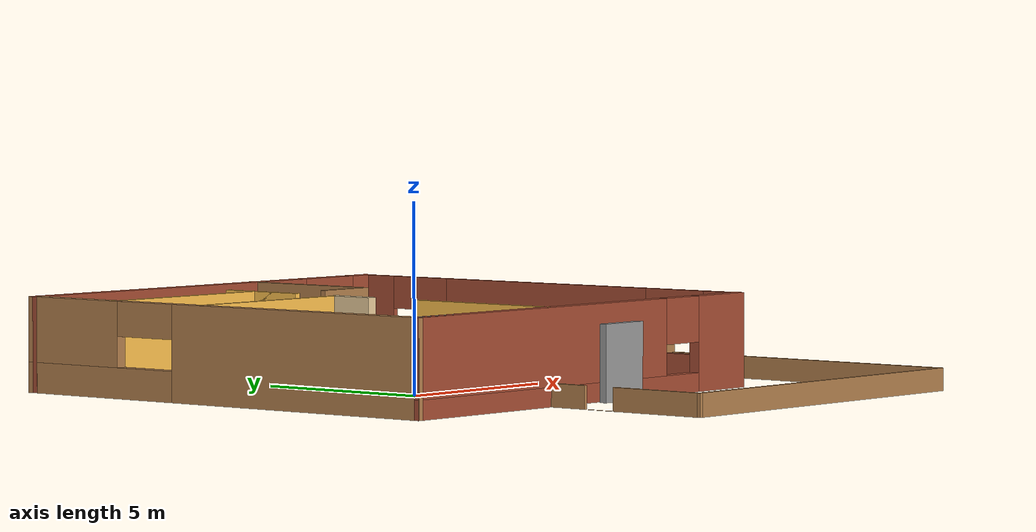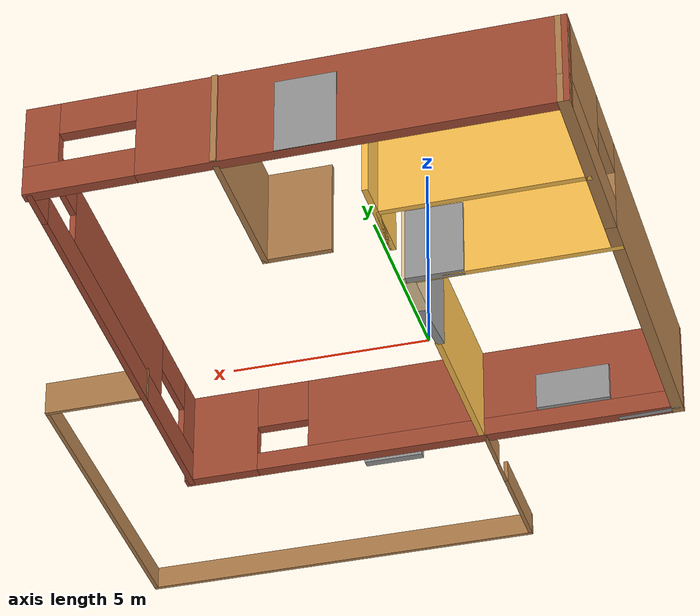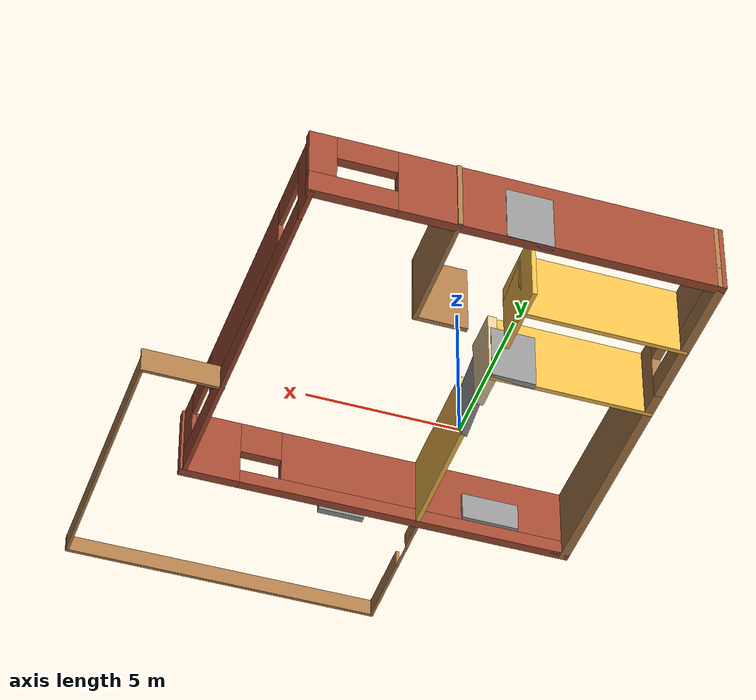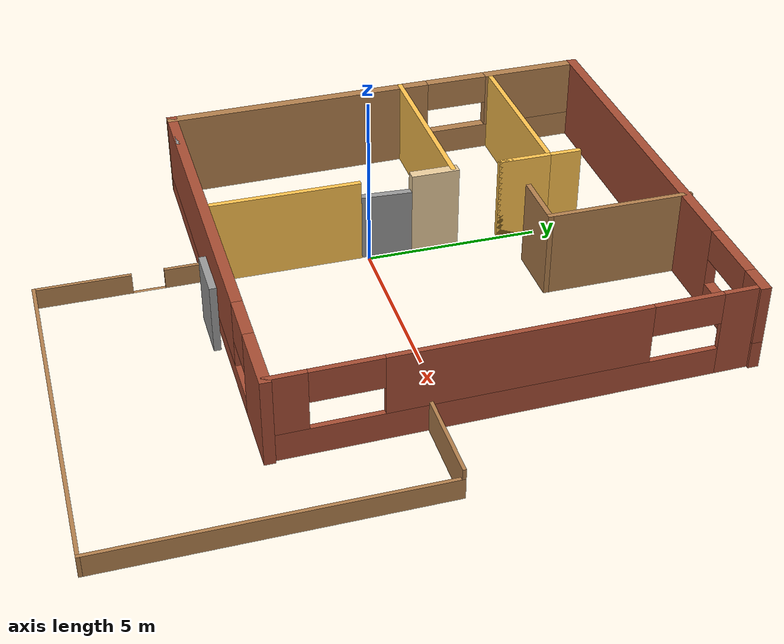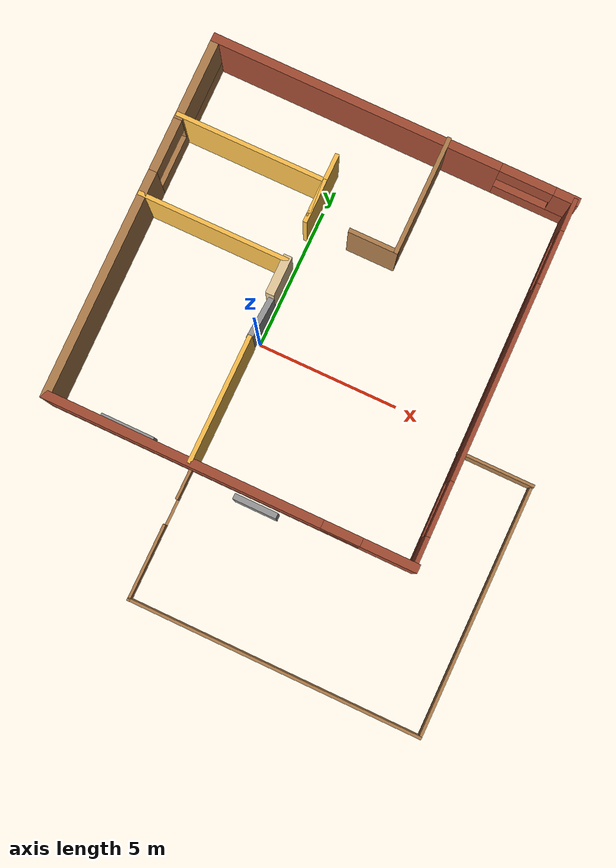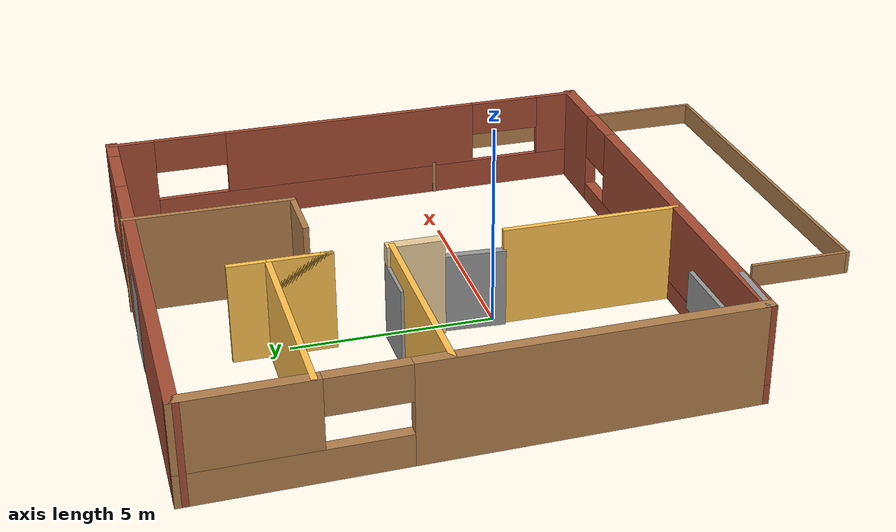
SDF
<?xml version='1.0'?>
<sdf version='1.6'>
  <model name='robothause'>
    <pose frame=''>2.30044 -0.5115 0 0 -0 0</pose>
    <link name='Door_0'>
      <collision name='Door_0_Collision'>
        <geometry>
          <box>
            <size>1.5 0.17 2</size>
          </box>
        </geometry>
        <pose frame=''>0 0 1 0 -0 0</pose>
      </collision>
      <visual name='Door_0_Visual'>
        <pose frame=''>0 0 1 0 -0 0</pose>
        <geometry>
          <box>
            <size>1.5 0.17 2</size>
          </box>
        </geometry>
        <material>
          <script>
            <uri>file://media/materials/scripts/gazebo.material</uri>
            <name>Gazebo/Grey</name>
          </script>
        </material>
      </visual>
      <pose frame=''>-1.60451 8.84376 0 0 -0 0</pose>
    </link>
    <link name='Door_5'>
      <collision name='Door_5_Collision'>
        <geometry>
          <box>
            <size>1.45658 0.2 2</size>
          </box>
        </geometry>
        <pose frame=''>0 0 1 0 -0 0</pose>
      </collision>
      <visual name='Door_5_Visual'>
        <pose frame=''>0 0 1 0 -0 0</pose>
        <geometry>
          <box>
            <size>1.45658 0.2 2</size>
          </box>
        </geometry>
        <material>
          <script>
            <uri>file://media/materials/scripts/gazebo.material</uri>
            <name>Gazebo/Grey</name>
          </script>
        </material>
      </visual>
      <pose frame=''>-3.14527 3.09831 0 0 0 -3.1286</pose>
    </link>
    <link name='Door_6'>
      <collision name='Door_6_Collision'>
        <geometry>
          <box>
            <size>1.52189 0.2 2</size>
          </box>
        </geometry>
        <pose frame=''>0 0 1 0 -0 0</pose>
      </collision>
      <visual name='Door_6_Visual'>
        <pose frame=''>0 0 1 0 -0 0</pose>
        <geometry>
          <box>
            <size>1.52189 0.2 2</size>
          </box>
        </geometry>
        <material>
          <script>
            <uri>file://media/materials/scripts/gazebo.material</uri>
            <name>Gazebo/Grey</name>
          </script>
        </material>
      </visual>
      <pose frame=''>-2.4791 1.03929 0 0 -0 -1.63443</pose>
    </link>
    <link name='Door_7'>
      <collision name='Door_7_Collision'>
        <geometry>
          <box>
            <size>1.512 0.2 2</size>
          </box>
        </geometry>
        <pose frame=''>0 0 1 0 -0 0</pose>
      </collision>
      <visual name='Door_7_Visual'>
        <pose frame=''>0 0 1 0 -0 0</pose>
        <geometry>
          <box>
            <size>1.512 0.2 2</size>
          </box>
        </geometry>
        <material>
          <script>
            <uri>file://media/materials/scripts/gazebo.material</uri>
            <name>Gazebo/Grey</name>
          </script>
        </material>
      </visual>
      <pose frame=''>-0.035046 -4.48603 0 0 -0 0</pose>
    </link>
    <link name='Wall_0'>
      <collision name='Wall_0_Collision'>
        <geometry>
          <box>
            <size>1.59265 0.15 2.5</size>
          </box>
        </geometry>
        <pose frame=''>0 0 1.25 0 -0 0</pose>
      </collision>
      <visual name='Wall_0_Visual'>
        <pose frame=''>0 0 1.25 0 -0 0</pose>
        <geometry>
          <box>
            <size>1.59265 0.15 2.5</size>
          </box>
        </geometry>
        <material>
          <script>
            <uri>file://media/materials/scripts/gazebo.material</uri>
            <name>Gazebo/Grey</name>
          </script>
          <ambient>1 1 1 1</ambient>
        </material>
        <meta>
          <layer>0</layer>
        </meta>
      </visual>
      <pose frame=''>-6.79917 -4.14417 0 0 -0 3.11156</pose>
    </link>
    <link name='Wall_10'>
      <collision name='Wall_10_Collision'>
        <geometry>
          <box>
            <size>4.5 0.15 2.5</size>
          </box>
        </geometry>
        <pose frame=''>0 0 1.25 0 -0 0</pose>
      </collision>
      <visual name='Wall_10_Visual'>
        <pose frame=''>0 0 1.25 0 -0 0</pose>
        <geometry>
          <box>
            <size>4.5 0.15 2.5</size>
          </box>
        </geometry>
        <material>
          <script>
            <uri>file://media/materials/scripts/gazebo.material</uri>
            <name>Gazebo/Grey</name>
          </script>
          <ambient>1 0.764706 0.305882 1</ambient>
        </material>
        <meta>
          <layer>0</layer>
        </meta>
      </visual>
      <pose frame=''>-2.47244 -1.9195 0 0 -0 -1.5708</pose>
    </link>
    <link name='Wall_12'>
      <collision name='Wall_12_Collision'>
        <geometry>
          <box>
            <size>5.35 0.15 2.5</size>
          </box>
        </geometry>
        <pose frame=''>0 0 1.25 0 -0 0</pose>
      </collision>
      <visual name='Wall_12_Visual'>
        <pose frame=''>0 0 1.25 0 -0 0</pose>
        <geometry>
          <box>
            <size>5.35 0.15 2.5</size>
          </box>
        </geometry>
        <material>
          <script>
            <uri>file://media/materials/scripts/gazebo.material</uri>
            <name>Gazebo/Grey</name>
          </script>
          <ambient>1 0.764706 0.305882 1</ambient>
        </material>
        <meta>
          <layer>0</layer>
        </meta>
      </visual>
      <pose frame=''>-5.08344 3.0385 0 0 -0 0</pose>
    </link>
    <link name='Wall_13'>
      <collision name='Wall_13_Collision'>
        <geometry>
          <box>
            <size>1.4004 0.3 2.5</size>
          </box>
        </geometry>
        <pose frame=''>0 0 1.25 0 -0 0</pose>
      </collision>
      <visual name='Wall_13_Visual'>
        <pose frame=''>0 0 1.25 0 -0 0</pose>
        <geometry>
          <box>
            <size>1.4004 0.3 2.5</size>
          </box>
        </geometry>
        <material>
          <script>
            <uri>file://media/materials/scripts/gazebo.material</uri>
            <name>Gazebo/Grey</name>
          </script>
          <ambient>0.921569 0.807843 0.615686 1</ambient>
        </material>
        <meta>
          <layer>0</layer>
        </meta>
      </visual>
      <pose frame=''>-2.48344 2.4885 0 0 -0 -1.5708</pose>
    </link>
    <link name='Wall_15'>
      <collision name='Wall_15_Collision'>
        <geometry>
          <box>
            <size>5.25 0.15 2.5</size>
          </box>
        </geometry>
        <pose frame=''>0 0 1.25 0 -0 0</pose>
      </collision>
      <visual name='Wall_15_Visual'>
        <pose frame=''>0 0 1.25 0 -0 0</pose>
        <geometry>
          <box>
            <size>5.25 0.15 2.5</size>
          </box>
        </geometry>
        <material>
          <script>
            <uri>file://media/materials/scripts/gazebo.material</uri>
            <name>Gazebo/Grey</name>
          </script>
          <ambient>1 0.764706 0.305882 1</ambient>
        </material>
        <meta>
          <layer>0</layer>
        </meta>
      </visual>
      <pose frame=''>-5.16044 5.9405 0 0 -0 0</pose>
    </link>
    <link name='Wall_17'>
      <pose frame=''>-2.46244 5.6595 0 0 -0 -1.5708</pose>
      <visual name='Wall_17_Visual_0'>
        <pose frame=''>0 0 1.25 0 -0 0</pose>
        <geometry>
          <box>
            <size>2.5 0.15 2.5</size>
          </box>
        </geometry>
        <material>
          <script>
            <uri>file://media/materials/scripts/gazebo.material</uri>
            <name>Gazebo/Grey</name>
          </script>
          <ambient>1 0.764706 0.305882 1</ambient>
        </material>
        <meta>
          <layer>0</layer>
        </meta>
      </visual>
      <collision name='Wall_17_Collision_0'>
        <geometry>
          <box>
            <size>2.5 0.15 2.5</size>
          </box>
        </geometry>
        <pose frame=''>0 0 1.25 0 -0 0</pose>
      </collision>
      <visual name='Wall_17_Visual_1'>
        <pose frame=''>0.466174 0 1.25 0 -0 0</pose>
        <geometry>
          <box>
            <size>1.56765 0.15 2.5</size>
          </box>
        </geometry>
        <material>
          <script>
            <uri>file://media/materials/scripts/gazebo.material</uri>
            <name>Gazebo/Grey</name>
          </script>
          <ambient>1 0.764706 0.305882 1</ambient>
        </material>
        <meta>
          <layer>0</layer>
        </meta>
      </visual>
      <collision name='Wall_17_Collision_1'>
        <geometry>
          <box>
            <size>1.56765 0.15 2.5</size>
          </box>
        </geometry>
        <pose frame=''>0.466174 0 1.25 0 -0 0</pose>
      </collision>
    </link>
    <link name='Wall_19'>
      <collision name='Wall_19_Collision'>
        <geometry>
          <box>
            <size>4.25 0.15 2.5</size>
          </box>
        </geometry>
        <pose frame=''>0 0 1.25 0 -0 0</pose>
      </collision>
      <visual name='Wall_19_Visual'>
        <pose frame=''>0 0 1.25 0 -0 0</pose>
        <geometry>
          <box>
            <size>4.25 0.15 2.5</size>
          </box>
        </geometry>
        <material>
          <script>
            <uri>file://media/materials/scripts/gazebo.material</uri>
            <name>Gazebo/Wood</name>
          </script>
          <ambient>1 1 1 1</ambient>
        </material>
        <meta>
          <layer>0</layer>
        </meta>
      </visual>
      <pose frame=''>0.606561 6.8285 0 0 -0 -1.5708</pose>
    </link>
    <link name='Wall_20'>
      <collision name='Wall_20_Collision'>
        <geometry>
          <box>
            <size>1.75 0.15 2.5</size>
          </box>
        </geometry>
        <pose frame=''>0 0 1.25 0 -0 0</pose>
      </collision>
      <visual name='Wall_20_Visual'>
        <pose frame=''>0 0 1.25 0 -0 0</pose>
        <geometry>
          <box>
            <size>1.75 0.15 2.5</size>
          </box>
        </geometry>
        <material>
          <script>
            <uri>file://media/materials/scripts/gazebo.material</uri>
            <name>Gazebo/Wood</name>
          </script>
          <ambient>1 1 1 1</ambient>
        </material>
        <meta>
          <layer>0</layer>
        </meta>
      </visual>
      <pose frame=''>-0.193439 4.7785 0 0 -0 3.14159</pose>
    </link>
    <link name='Wall_22'>
      <collision name='Wall_22_Collision'>
        <geometry>
          <box>
            <size>2.7 0.1 0.9</size>
          </box>
        </geometry>
        <pose frame=''>0 0 0.45 0 -0 0</pose>
      </collision>
      <visual name='Wall_22_Visual'>
        <pose frame=''>0 0 0.45 0 -0 0</pose>
        <geometry>
          <box>
            <size>2.7 0.1 0.9</size>
          </box>
        </geometry>
        <material>
          <script>
            <uri>file://media/materials/scripts/gazebo.material</uri>
            <name>Gazebo/Wood</name>
          </script>
          <ambient>1 1 1 1</ambient>
        </material>
        <meta>
          <layer>0</layer>
        </meta>
      </visual>
      <pose frame=''>6.50656 -0.0535 0 0 -0 0</pose>
    </link>
    <link name='Wall_23'>
      <collision name='Wall_23_Collision'>
        <geometry>
          <box>
            <size>8.95 0.1 0.6</size>
          </box>
        </geometry>
        <pose frame=''>0 0 0.3 0 -0 0</pose>
      </collision>
      <visual name='Wall_23_Visual'>
        <pose frame=''>0 0 0.3 0 -0 0</pose>
        <geometry>
          <box>
            <size>8.95 0.1 0.6</size>
          </box>
        </geometry>
        <material>
          <script>
            <uri>file://media/materials/scripts/gazebo.material</uri>
            <name>Gazebo/Wood</name>
          </script>
          <ambient>1 1 1 1</ambient>
        </material>
        <meta>
          <layer>0</layer>
        </meta>
      </visual>
      <pose frame=''>7.80656 -4.4785 0 0 -0 -1.5708</pose>
    </link>
    <link name='Wall_24'>
      <collision name='Wall_24_Collision'>
        <geometry>
          <box>
            <size>10.45 0.1 0.6</size>
          </box>
        </geometry>
        <pose frame=''>0 0 0.3 0 -0 0</pose>
      </collision>
      <visual name='Wall_24_Visual'>
        <pose frame=''>0 0 0.3 0 -0 0</pose>
        <geometry>
          <box>
            <size>10.45 0.1 0.6</size>
          </box>
        </geometry>
        <material>
          <script>
            <uri>file://media/materials/scripts/gazebo.material</uri>
            <name>Gazebo/Wood</name>
          </script>
          <ambient>1 1 1 1</ambient>
        </material>
        <meta>
          <layer>0</layer>
        </meta>
      </visual>
      <pose frame=''>2.63156 -8.9035 0 0 -0 3.14159</pose>
    </link>
    <link name='Wall_25'>
      <pose frame=''>-2.54344 -6.4785 0 0 -0 1.5708</pose>
      <visual name='Wall_25_Visual_0'>
        <pose frame=''>-1.11707 0 0.3 0 -0 0</pose>
        <geometry>
          <box>
            <size>2.71585 0.1 0.6</size>
          </box>
        </geometry>
        <material>
          <script>
            <uri>file://media/materials/scripts/gazebo.material</uri>
            <name>Gazebo/Wood</name>
          </script>
          <ambient>0.760784 0.662745 0.627451 1</ambient>
        </material>
        <meta>
          <layer>0</layer>
        </meta>
      </visual>
      <collision name='Wall_25_Collision_0'>
        <geometry>
          <box>
            <size>2.71585 0.1 0.6</size>
          </box>
        </geometry>
        <pose frame=''>-1.11707 0 0.3 0 -0 0</pose>
      </collision>
      <visual name='Wall_25_Visual_1'>
        <pose frame=''>1.80793 0 0.3 0 -0 0</pose>
        <geometry>
          <box>
            <size>1.33415 0.1 0.6</size>
          </box>
        </geometry>
        <material>
          <script>
            <uri>file://media/materials/scripts/gazebo.material</uri>
            <name>Gazebo/Wood</name>
          </script>
          <ambient>0.760784 0.662745 0.627451 1</ambient>
        </material>
        <meta>
          <layer>0</layer>
        </meta>
      </visual>
      <collision name='Wall_25_Collision_1'>
        <geometry>
          <box>
            <size>1.33415 0.1 0.6</size>
          </box>
        </geometry>
        <pose frame=''>1.80793 0 0.3 0 -0 0</pose>
      </collision>
      <visual name='Wall_25_Visual_2'>
        <pose frame=''>0.690851 0 0 0 -0 0</pose>
        <geometry>
          <box>
            <size>0.9 0.1 0</size>
          </box>
        </geometry>
        <material>
          <script>
            <uri>file://media/materials/scripts/gazebo.material</uri>
            <name>Gazebo/Wood</name>
          </script>
          <ambient>0.760784 0.662745 0.627451 1</ambient>
        </material>
        <meta>
          <layer>0</layer>
        </meta>
      </visual>
      <collision name='Wall_25_Collision_2'>
        <geometry>
          <box>
            <size>0.9 0.1 0</size>
          </box>
        </geometry>
        <pose frame=''>0.690851 0 0 0 -0 0</pose>
      </collision>
    </link>
    <link name='Wall_5'>
      <pose frame=''>-7.61244 2.334 0 0 -0 1.58505</pose>
      <visual name='Wall_5_Visual_0'>
        <pose frame=''>-2.53092 0 1.25 0 -0 0</pose>
        <geometry>
          <box>
            <size>8.15247 0.3 2.5</size>
          </box>
        </geometry>
        <material>
          <script>
            <uri>file://media/materials/scripts/gazebo.material</uri>
            <name>Gazebo/Wood</name>
          </script>
          <ambient>0.435294 0.796078 0.67451 1</ambient>
        </material>
        <meta>
          <layer>0</layer>
        </meta>
      </visual>
      <collision name='Wall_5_Collision_0'>
        <geometry>
          <box>
            <size>8.15247 0.3 2.5</size>
          </box>
        </geometry>
        <pose frame=''>-2.53092 0 1.25 0 -0 0</pose>
      </collision>
      <visual name='Wall_5_Visual_1'>
        <pose frame=''>4.07624 0 0.4 0 -0 0</pose>
        <geometry>
          <box>
            <size>5.06184 0.3 0.8</size>
          </box>
        </geometry>
        <material>
          <script>
            <uri>file://media/materials/scripts/gazebo.material</uri>
            <name>Gazebo/Wood</name>
          </script>
          <ambient>0.435294 0.796078 0.67451 1</ambient>
        </material>
        <meta>
          <layer>0</layer>
        </meta>
      </visual>
      <collision name='Wall_5_Collision_1'>
        <geometry>
          <box>
            <size>5.06184 0.3 0.8</size>
          </box>
        </geometry>
        <pose frame=''>4.07624 0 0.4 0 -0 0</pose>
      </collision>
      <visual name='Wall_5_Visual_2'>
        <pose frame=''>5.02624 0 1.65 0 -0 0</pose>
        <geometry>
          <box>
            <size>3.16184 0.3 1.7</size>
          </box>
        </geometry>
        <material>
          <script>
            <uri>file://media/materials/scripts/gazebo.material</uri>
            <name>Gazebo/Wood</name>
          </script>
          <ambient>0.435294 0.796078 0.67451 1</ambient>
        </material>
        <meta>
          <layer>0</layer>
        </meta>
      </visual>
      <collision name='Wall_5_Collision_2'>
        <geometry>
          <box>
            <size>3.16184 0.3 1.7</size>
          </box>
        </geometry>
        <pose frame=''>5.02624 0 1.65 0 -0 0</pose>
      </collision>
      <visual name='Wall_5_Visual_3'>
        <pose frame=''>2.49532 0 2.05 0 -0 0</pose>
        <geometry>
          <box>
            <size>1.9 0.3 0.9</size>
          </box>
        </geometry>
        <material>
          <script>
            <uri>file://media/materials/scripts/gazebo.material</uri>
            <name>Gazebo/Wood</name>
          </script>
          <ambient>0.435294 0.796078 0.67451 1</ambient>
        </material>
        <meta>
          <layer>0</layer>
        </meta>
      </visual>
      <collision name='Wall_5_Collision_3'>
        <geometry>
          <box>
            <size>1.9 0.3 0.9</size>
          </box>
        </geometry>
        <pose frame=''>2.49532 0 2.05 0 -0 0</pose>
      </collision>
    </link>
    <link name='Wall_6'>
      <pose frame=''>-1.27944 8.764 0 0 -0 -0.004124</pose>
      <visual name='Wall_6_Visual_0'>
        <pose frame=''>-1.38469 0 1.25 0 -0 0</pose>
        <geometry>
          <box>
            <size>10.3807 0.3 2.5</size>
          </box>
        </geometry>
        <material>
          <script>
            <uri>file://media/materials/scripts/gazebo.material</uri>
            <name>Gazebo/Bricks</name>
          </script>
          <ambient>1 1 1 1</ambient>
        </material>
        <meta>
          <layer>0</layer>
        </meta>
      </visual>
      <collision name='Wall_6_Collision_0'>
        <geometry>
          <box>
            <size>10.3807 0.3 2.5</size>
          </box>
        </geometry>
        <pose frame=''>-1.38469 0 1.25 0 -0 0</pose>
      </collision>
      <visual name='Wall_6_Visual_1'>
        <pose frame=''>5.19036 0 0.4 0 -0 0</pose>
        <geometry>
          <box>
            <size>2.76939 0.3 0.8</size>
          </box>
        </geometry>
        <material>
          <script>
            <uri>file://media/materials/scripts/gazebo.material</uri>
            <name>Gazebo/Bricks</name>
          </script>
          <ambient>1 1 1 1</ambient>
        </material>
        <meta>
          <layer>0</layer>
        </meta>
      </visual>
      <collision name='Wall_6_Collision_1'>
        <geometry>
          <box>
            <size>2.76939 0.3 0.8</size>
          </box>
        </geometry>
        <pose frame=''>5.19036 0 0.4 0 -0 0</pose>
      </collision>
      <visual name='Wall_6_Visual_2'>
        <pose frame=''>6.14036 0 1.65 0 -0 0</pose>
        <geometry>
          <box>
            <size>0.869388 0.3 1.7</size>
          </box>
        </geometry>
        <material>
          <script>
            <uri>file://media/materials/scripts/gazebo.material</uri>
            <name>Gazebo/Bricks</name>
          </script>
          <ambient>1 1 1 1</ambient>
        </material>
        <meta>
          <layer>0</layer>
        </meta>
      </visual>
      <collision name='Wall_6_Collision_2'>
        <geometry>
          <box>
            <size>0.869388 0.3 1.7</size>
          </box>
        </geometry>
        <pose frame=''>6.14036 0 1.65 0 -0 0</pose>
      </collision>
      <visual name='Wall_6_Visual_3'>
        <pose frame=''>4.75567 0 2.05 0 -0 0</pose>
        <geometry>
          <box>
            <size>1.9 0.3 0.9</size>
          </box>
        </geometry>
        <material>
          <script>
            <uri>file://media/materials/scripts/gazebo.material</uri>
            <name>Gazebo/Bricks</name>
          </script>
          <ambient>1 1 1 1</ambient>
        </material>
        <meta>
          <layer>0</layer>
        </meta>
      </visual>
      <collision name='Wall_6_Collision_3'>
        <geometry>
          <box>
            <size>1.9 0.3 0.9</size>
          </box>
        </geometry>
        <pose frame=''>4.75567 0 2.05 0 -0 0</pose>
      </collision>
    </link>
    <link name='Wall_7'>
      <pose frame=''>5.22006 2.3075 0 0 -0 -1.55921</pose>
      <visual name='Wall_7_Visual_0'>
        <pose frame=''>-5.91986 0 1.25 0 -0 0</pose>
        <geometry>
          <box>
            <size>1.17114 0.15 2.5</size>
          </box>
        </geometry>
        <material>
          <script>
            <uri>file://media/materials/scripts/gazebo.material</uri>
            <name>Gazebo/Bricks</name>
          </script>
          <ambient>0.435294 0.796078 0.67451 1</ambient>
        </material>
        <meta>
          <layer>0</layer>
        </meta>
      </visual>
      <collision name='Wall_7_Collision_0'>
        <geometry>
          <box>
            <size>1.17114 0.15 2.5</size>
          </box>
        </geometry>
        <pose frame=''>-5.91986 0 1.25 0 -0 0</pose>
      </collision>
      <visual name='Wall_7_Visual_1'>
        <pose frame=''>0.585568 0 0.4 0 -0 0</pose>
        <geometry>
          <box>
            <size>11.8397 0.15 0.8</size>
          </box>
        </geometry>
        <material>
          <script>
            <uri>file://media/materials/scripts/gazebo.material</uri>
            <name>Gazebo/Bricks</name>
          </script>
          <ambient>0.435294 0.796078 0.67451 1</ambient>
        </material>
        <meta>
          <layer>0</layer>
        </meta>
      </visual>
      <collision name='Wall_7_Collision_1'>
        <geometry>
          <box>
            <size>11.8397 0.15 0.8</size>
          </box>
        </geometry>
        <pose frame=''>0.585568 0 0.4 0 -0 0</pose>
      </collision>
      <visual name='Wall_7_Visual_2'>
        <pose frame=''>0.032154 0 1.65 0 -0 0</pose>
        <geometry>
          <box>
            <size>6.9329 0.15 1.7</size>
          </box>
        </geometry>
        <material>
          <script>
            <uri>file://media/materials/scripts/gazebo.material</uri>
            <name>Gazebo/Bricks</name>
          </script>
          <ambient>0.435294 0.796078 0.67451 1</ambient>
        </material>
        <meta>
          <layer>0</layer>
        </meta>
      </visual>
      <collision name='Wall_7_Collision_2'>
        <geometry>
          <box>
            <size>6.9329 0.15 1.7</size>
          </box>
        </geometry>
        <pose frame=''>0.032154 0 1.65 0 -0 0</pose>
      </collision>
      <visual name='Wall_7_Visual_3'>
        <pose frame=''>5.95202 0 1.65 0 -0 0</pose>
        <geometry>
          <box>
            <size>1.10683 0.15 1.7</size>
          </box>
        </geometry>
        <material>
          <script>
            <uri>file://media/materials/scripts/gazebo.material</uri>
            <name>Gazebo/Bricks</name>
          </script>
          <ambient>0.435294 0.796078 0.67451 1</ambient>
        </material>
        <meta>
          <layer>0</layer>
        </meta>
      </visual>
      <collision name='Wall_7_Collision_3'>
        <geometry>
          <box>
            <size>1.10683 0.15 1.7</size>
          </box>
        </geometry>
        <pose frame=''>5.95202 0 1.65 0 -0 0</pose>
      </collision>
      <visual name='Wall_7_Visual_4'>
        <pose frame=''>-4.3843 0 2.05 0 -0 0</pose>
        <geometry>
          <box>
            <size>1.9 0.15 0.9</size>
          </box>
        </geometry>
        <material>
          <script>
            <uri>file://media/materials/scripts/gazebo.material</uri>
            <name>Gazebo/Bricks</name>
          </script>
          <ambient>0.435294 0.796078 0.67451 1</ambient>
        </material>
        <meta>
          <layer>0</layer>
        </meta>
      </visual>
      <collision name='Wall_7_Collision_4'>
        <geometry>
          <box>
            <size>1.9 0.15 0.9</size>
          </box>
        </geometry>
        <pose frame=''>-4.3843 0 2.05 0 -0 0</pose>
      </collision>
      <visual name='Wall_7_Visual_5'>
        <pose frame=''>4.4486 0 2.05 0 -0 0</pose>
        <geometry>
          <box>
            <size>1.9 0.15 0.9</size>
          </box>
        </geometry>
        <material>
          <script>
            <uri>file://media/materials/scripts/gazebo.material</uri>
            <name>Gazebo/Bricks</name>
          </script>
          <ambient>0.435294 0.796078 0.67451 1</ambient>
        </material>
        <meta>
          <layer>0</layer>
        </meta>
      </visual>
      <collision name='Wall_7_Collision_5'>
        <geometry>
          <box>
            <size>1.9 0.15 0.9</size>
          </box>
        </geometry>
        <pose frame=''>4.4486 0 2.05 0 -0 0</pose>
      </collision>
    </link>
    <link name='Wall_8'>
      <pose frame=''>-1.11294 -4.1225 0 0 -0 3.14159</pose>
      <visual name='Wall_8_Visual_0'>
        <pose frame=''>-5.5772 0 1.25 0 -0 0</pose>
        <geometry>
          <box>
            <size>1.96061 0.3 2.5</size>
          </box>
        </geometry>
        <material>
          <script>
            <uri>file://media/materials/scripts/gazebo.material</uri>
            <name>Gazebo/Bricks</name>
          </script>
          <ambient>0.447059 0.623529 0.811765 1</ambient>
        </material>
        <meta>
          <layer>0</layer>
        </meta>
      </visual>
      <collision name='Wall_8_Collision_0'>
        <geometry>
          <box>
            <size>1.96061 0.3 2.5</size>
          </box>
        </geometry>
        <pose frame=''>-5.5772 0 1.25 0 -0 0</pose>
      </collision>
      <visual name='Wall_8_Visual_1'>
        <pose frame=''>0.980304 0 0.25 0 -0 0</pose>
        <geometry>
          <box>
            <size>11.1544 0.3 0.5</size>
          </box>
        </geometry>
        <material>
          <script>
            <uri>file://media/materials/scripts/gazebo.material</uri>
            <name>Gazebo/Bricks</name>
          </script>
          <ambient>0.447059 0.623529 0.811765 1</ambient>
        </material>
        <meta>
          <layer>0</layer>
        </meta>
      </visual>
      <collision name='Wall_8_Collision_1'>
        <geometry>
          <box>
            <size>11.1544 0.3 0.5</size>
          </box>
        </geometry>
        <pose frame=''>0.980304 0 0.25 0 -0 0</pose>
      </collision>
      <visual name='Wall_8_Visual_2'>
        <pose frame=''>1.65961 0 1.5 0 -0 0</pose>
        <geometry>
          <box>
            <size>9.79579 0.3 2</size>
          </box>
        </geometry>
        <material>
          <script>
            <uri>file://media/materials/scripts/gazebo.material</uri>
            <name>Gazebo/Bricks</name>
          </script>
          <ambient>0.447059 0.623529 0.811765 1</ambient>
        </material>
        <meta>
          <layer>0</layer>
        </meta>
      </visual>
      <collision name='Wall_8_Collision_2'>
        <geometry>
          <box>
            <size>9.79579 0.3 2</size>
          </box>
        </geometry>
        <pose frame=''>1.65961 0 1.5 0 -0 0</pose>
      </collision>
      <visual name='Wall_8_Visual_3'>
        <pose frame=''>-3.91759 0 1.9 0 -0 0</pose>
        <geometry>
          <box>
            <size>1.3586 0.3 1.2</size>
          </box>
        </geometry>
        <material>
          <script>
            <uri>file://media/materials/scripts/gazebo.material</uri>
            <name>Gazebo/Bricks</name>
          </script>
          <ambient>0.447059 0.623529 0.811765 1</ambient>
        </material>
        <meta>
          <layer>0</layer>
        </meta>
      </visual>
      <collision name='Wall_8_Collision_3'>
        <geometry>
          <box>
            <size>1.3586 0.3 1.2</size>
          </box>
        </geometry>
        <pose frame=''>-3.91759 0 1.9 0 -0 0</pose>
      </collision>
    </link>
    <link name='Window_0'>
      <collision name='Window_0_Collision'>
        <geometry>
          <box>
            <size>1.9 0.17 1</size>
          </box>
        </geometry>
        <pose frame=''>0 0 0.5 0 -0 0</pose>
      </collision>
      <visual name='Window_0_Visual'>
        <pose frame=''>0 0 0.5 0 -0 0</pose>
        <geometry>
          <box>
            <size>1.9 0.17 1</size>
          </box>
        </geometry>
        <material>
          <script>
            <uri>file://media/materials/scripts/gazebo.material</uri>
            <name>Gazebo/Grey</name>
          </script>
        </material>
      </visual>
      <pose frame=''>-4.90044 -3.9351 0.5 0 -0 0</pose>
    </link>
    <static>1</static>
  </model>
</sdf>
